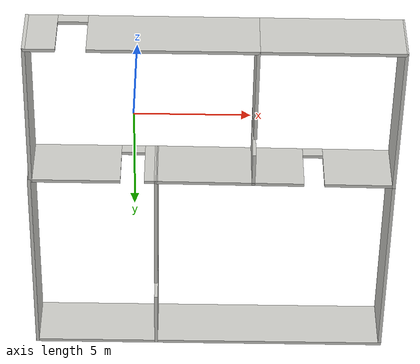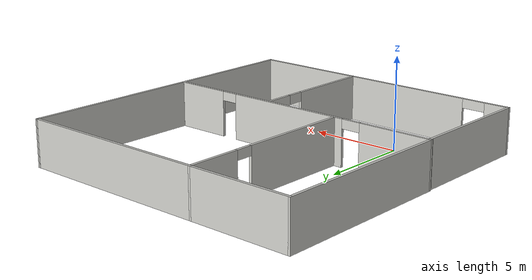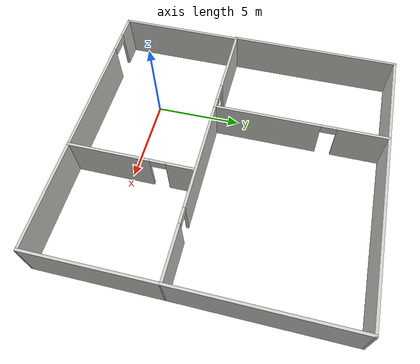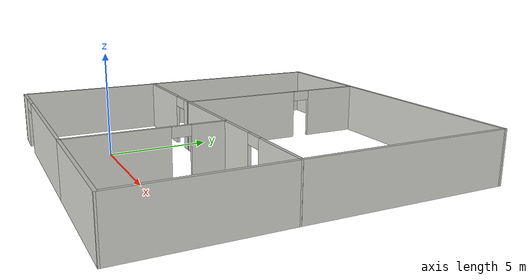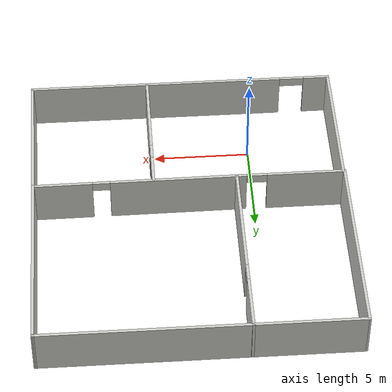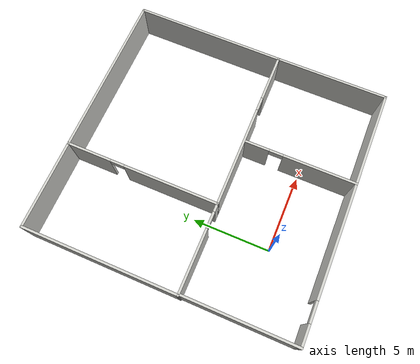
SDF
<?xml version='1.0'?>
<sdf version='1.6'>
  <model name='House_small2'>
    <pose frame=''>3.42702 5.19619 0 0 -0 0</pose>
    <link name='Wall_0'>
      <collision name='Wall_0_Collision'>
        <geometry>
          <box>
            <size>5.75 0.15 2.5</size>
          </box>
        </geometry>
        <pose frame=''>0 0 1.25 0 -0 0</pose>
      </collision>
      <visual name='Wall_0_Visual'>
        <pose frame=''>0 0 1.25 0 -0 0</pose>
        <geometry>
          <box>
            <size>5.75 0.15 2.5</size>
          </box>
        </geometry>
        <material>
          <script>
            <uri>file://media/materials/scripts/gazebo.material</uri>
            <name>Gazebo/CeilingTiled</name>
          </script>
          <ambient>0.333333 0.666667 1 1</ambient>
        </material>
        <meta>
          <layer>0</layer>
        </meta>
      </visual>
      <pose frame=''>-5.29913 8.46158 0 0 -0 0</pose>
    </link>
    <link name='Wall_10'>
      <pose frame=''>-5.30138 -1.35719 0 0 -0 3.14159</pose>
      <visual name='Wall_10_Visual_0'>
        <pose frame=''>-2.58002 0 1.25 0 -0 0</pose>
        <geometry>
          <box>
            <size>0.589959 0.15 2.5</size>
          </box>
        </geometry>
        <material>
          <script>
            <uri>file://media/materials/scripts/gazebo.material</uri>
            <name>Gazebo/CeilingTiled</name>
          </script>
          <ambient>0.333333 0.666667 1 1</ambient>
        </material>
        <meta>
          <layer>0</layer>
        </meta>
      </visual>
      <collision name='Wall_10_Collision_0'>
        <geometry>
          <box>
            <size>0.589959 0.15 2.5</size>
          </box>
        </geometry>
        <pose frame=''>-2.58002 0 1.25 0 -0 0</pose>
      </collision>
      <visual name='Wall_10_Visual_1'>
        <pose frame=''>0.822166 0 1.25 0 -0 0</pose>
        <geometry>
          <box>
            <size>4.10567 0.15 2.5</size>
          </box>
        </geometry>
        <material>
          <script>
            <uri>file://media/materials/scripts/gazebo.material</uri>
            <name>Gazebo/CeilingTiled</name>
          </script>
          <ambient>0.333333 0.666667 1 1</ambient>
        </material>
        <meta>
          <layer>0</layer>
        </meta>
      </visual>
      <collision name='Wall_10_Collision_1'>
        <geometry>
          <box>
            <size>4.10567 0.15 2.5</size>
          </box>
        </geometry>
        <pose frame=''>0.822166 0 1.25 0 -0 0</pose>
      </collision>
      <visual name='Wall_10_Visual_2'>
        <pose frame=''>-1.75785 0 2.25 0 -0 0</pose>
        <geometry>
          <box>
            <size>1.05437 0.15 0.5</size>
          </box>
        </geometry>
        <material>
          <script>
            <uri>file://media/materials/scripts/gazebo.material</uri>
            <name>Gazebo/CeilingTiled</name>
          </script>
          <ambient>0.333333 0.666667 1 1</ambient>
        </material>
        <meta>
          <layer>0</layer>
        </meta>
      </visual>
      <collision name='Wall_10_Collision_2'>
        <geometry>
          <box>
            <size>1.05437 0.15 0.5</size>
          </box>
        </geometry>
        <pose frame=''>-1.75785 0 2.25 0 -0 0</pose>
      </collision>
    </link>
    <link name='Wall_11'>
      <collision name='Wall_11_Collision'>
        <geometry>
          <box>
            <size>9.96878 0.15 2.5</size>
          </box>
        </geometry>
        <pose frame=''>0 0 1.25 0 -0 0</pose>
      </collision>
      <visual name='Wall_11_Visual'>
        <pose frame=''>0 0 1.25 0 -0 0</pose>
        <geometry>
          <box>
            <size>9.96878 0.15 2.5</size>
          </box>
        </geometry>
        <material>
          <script>
            <uri>file://media/materials/scripts/gazebo.material</uri>
            <name>Gazebo/CeilingTiled</name>
          </script>
          <ambient>0.333333 0.666667 1 1</ambient>
        </material>
        <meta>
          <layer>0</layer>
        </meta>
      </visual>
      <pose frame=''>-8.10026 3.5522 0 0 -0 1.57057</pose>
    </link>
    <link name='Wall_13'>
      <pose frame=''>2.76546 -1.31729 0 0 -0 0.007576</pose>
      <visual name='Wall_13_Visual_0'>
        <pose frame=''>-2.02263 0 1.25 0 -0 0</pose>
        <geometry>
          <box>
            <size>6.63872 0.15 2.5</size>
          </box>
        </geometry>
        <material>
          <script>
            <uri>file://media/materials/scripts/gazebo.material</uri>
            <name>Gazebo/CeilingTiled</name>
          </script>
          <ambient>0.333333 0.666667 1 1</ambient>
        </material>
        <meta>
          <layer>0</layer>
        </meta>
      </visual>
      <collision name='Wall_13_Collision_0'>
        <geometry>
          <box>
            <size>6.63872 0.15 2.5</size>
          </box>
        </geometry>
        <pose frame=''>-2.02263 0 1.25 0 -0 0</pose>
      </collision>
      <visual name='Wall_13_Visual_1'>
        <pose frame=''>3.76936 0 1.25 0 -0 0</pose>
        <geometry>
          <box>
            <size>3.14526 0.15 2.5</size>
          </box>
        </geometry>
        <material>
          <script>
            <uri>file://media/materials/scripts/gazebo.material</uri>
            <name>Gazebo/CeilingTiled</name>
          </script>
          <ambient>0.333333 0.666667 1 1</ambient>
        </material>
        <meta>
          <layer>0</layer>
        </meta>
      </visual>
      <collision name='Wall_13_Collision_1'>
        <geometry>
          <box>
            <size>3.14526 0.15 2.5</size>
          </box>
        </geometry>
        <pose frame=''>3.76936 0 1.25 0 -0 0</pose>
      </collision>
      <visual name='Wall_13_Visual_2'>
        <pose frame=''>1.74673 0 2.25 0 -0 0</pose>
        <geometry>
          <box>
            <size>0.9 0.15 0.5</size>
          </box>
        </geometry>
        <material>
          <script>
            <uri>file://media/materials/scripts/gazebo.material</uri>
            <name>Gazebo/CeilingTiled</name>
          </script>
          <ambient>0.333333 0.666667 1 1</ambient>
        </material>
        <meta>
          <layer>0</layer>
        </meta>
      </visual>
      <collision name='Wall_13_Collision_2'>
        <geometry>
          <box>
            <size>0.9 0.15 0.5</size>
          </box>
        </geometry>
        <pose frame=''>1.74673 0 2.25 0 -0 0</pose>
      </collision>
    </link>
    <link name='Wall_16'>
      <collision name='Wall_16_Collision'>
        <geometry>
          <box>
            <size>10.75 0.15 2.5</size>
          </box>
        </geometry>
        <pose frame=''>0 0 1.25 0 -0 0</pose>
      </collision>
      <visual name='Wall_16_Visual'>
        <pose frame=''>0 0 1.25 0 -0 0</pose>
        <geometry>
          <box>
            <size>10.75 0.15 2.5</size>
          </box>
        </geometry>
        <material>
          <script>
            <uri>file://media/materials/scripts/gazebo.material</uri>
            <name>Gazebo/CeilingTiled</name>
          </script>
          <ambient>0.333333 0.666667 1 1</ambient>
        </material>
        <meta>
          <layer>0</layer>
        </meta>
      </visual>
      <pose frame=''>2.80086 8.46158 0 0 -0 0</pose>
    </link>
    <link name='Wall_17'>
      <collision name='Wall_17_Collision'>
        <geometry>
          <box>
            <size>9.88922 0.15 2.5</size>
          </box>
        </geometry>
        <pose frame=''>0 0 1.25 0 -0 0</pose>
      </collision>
      <visual name='Wall_17_Visual'>
        <pose frame=''>0 0 1.25 0 -0 0</pose>
        <geometry>
          <box>
            <size>9.88922 0.15 2.5</size>
          </box>
        </geometry>
        <material>
          <script>
            <uri>file://media/materials/scripts/gazebo.material</uri>
            <name>Gazebo/CeilingTiled</name>
          </script>
          <ambient>0.333333 0.666667 1 1</ambient>
        </material>
        <meta>
          <layer>0</layer>
        </meta>
      </visual>
      <pose frame=''>8.06658 3.5921 0 0 0 -1.57784</pose>
    </link>
    <link name='Wall_19'>
      <collision name='Wall_19_Collision'>
        <geometry>
          <box>
            <size>7.33462 0.15 2.5</size>
          </box>
        </geometry>
        <pose frame=''>0 0 1.25 0 -0 0</pose>
      </collision>
      <visual name='Wall_19_Visual'>
        <pose frame=''>0 0 1.25 0 -0 0</pose>
        <geometry>
          <box>
            <size>7.33462 0.15 2.5</size>
          </box>
        </geometry>
        <material>
          <script>
            <uri>file://media/materials/scripts/gazebo.material</uri>
            <name>Gazebo/CeilingTiled</name>
          </script>
          <ambient>0.333333 0.666667 1 1</ambient>
        </material>
        <meta>
          <layer>0</layer>
        </meta>
      </visual>
      <pose frame=''>8.02694 -4.8697 0 0 0 -1.57229</pose>
    </link>
    <link name='Wall_22'>
      <collision name='Wall_22_Collision'>
        <geometry>
          <box>
            <size>6.35982 0.15 2.5</size>
          </box>
        </geometry>
        <pose frame=''>0 0 1.25 0 -0 0</pose>
      </collision>
      <visual name='Wall_22_Visual'>
        <pose frame=''>0 0 1.25 0 -0 0</pose>
        <geometry>
          <box>
            <size>6.35982 0.15 2.5</size>
          </box>
        </geometry>
        <material>
          <script>
            <uri>file://media/materials/scripts/gazebo.material</uri>
            <name>Gazebo/CeilingTiled</name>
          </script>
          <ambient>0.333333 0.666667 1 1</ambient>
        </material>
        <meta>
          <layer>0</layer>
        </meta>
      </visual>
      <pose frame=''>4.91667 -8.462 0 0 -0 3.14159</pose>
    </link>
    <link name='Wall_23'>
      <pose frame=''>1.81176 -4.912 0 0 -0 1.5708</pose>
      <visual name='Wall_23_Visual_0'>
        <pose frame=''>-1.28457 0 1.25 0 -0 0</pose>
        <geometry>
          <box>
            <size>4.68086 0.15 2.5</size>
          </box>
        </geometry>
        <material>
          <script>
            <uri>file://media/materials/scripts/gazebo.material</uri>
            <name>Gazebo/CeilingTiled</name>
          </script>
          <ambient>0.333333 0.666667 1 1</ambient>
        </material>
        <meta>
          <layer>0</layer>
        </meta>
      </visual>
      <collision name='Wall_23_Collision_0'>
        <geometry>
          <box>
            <size>4.68086 0.15 2.5</size>
          </box>
        </geometry>
        <pose frame=''>-1.28457 0 1.25 0 -0 0</pose>
      </collision>
      <visual name='Wall_23_Visual_1'>
        <pose frame=''>2.79043 0 1.25 0 -0 0</pose>
        <geometry>
          <box>
            <size>1.66914 0.15 2.5</size>
          </box>
        </geometry>
        <material>
          <script>
            <uri>file://media/materials/scripts/gazebo.material</uri>
            <name>Gazebo/CeilingTiled</name>
          </script>
          <ambient>0.333333 0.666667 1 1</ambient>
        </material>
        <meta>
          <layer>0</layer>
        </meta>
      </visual>
      <collision name='Wall_23_Collision_1'>
        <geometry>
          <box>
            <size>1.66914 0.15 2.5</size>
          </box>
        </geometry>
        <pose frame=''>2.79043 0 1.25 0 -0 0</pose>
      </collision>
      <visual name='Wall_23_Visual_2'>
        <pose frame=''>1.50586 0 2.25 0 -0 0</pose>
        <geometry>
          <box>
            <size>0.9 0.15 0.5</size>
          </box>
        </geometry>
        <material>
          <script>
            <uri>file://media/materials/scripts/gazebo.material</uri>
            <name>Gazebo/CeilingTiled</name>
          </script>
          <ambient>0.333333 0.666667 1 1</ambient>
        </material>
        <meta>
          <layer>0</layer>
        </meta>
      </visual>
      <collision name='Wall_23_Collision_2'>
        <geometry>
          <box>
            <size>0.9 0.15 0.5</size>
          </box>
        </geometry>
        <pose frame=''>1.50586 0 2.25 0 -0 0</pose>
      </collision>
    </link>
    <link name='Wall_25'>
      <pose frame=''>-3.11324 -8.462 0 0 -0 3.14159</pose>
      <visual name='Wall_25_Visual_0'>
        <pose frame=''>-1.34886 0 1.25 0 -0 0</pose>
        <geometry>
          <box>
            <size>7.30227 0.15 2.5</size>
          </box>
        </geometry>
        <material>
          <script>
            <uri>file://media/materials/scripts/gazebo.material</uri>
            <name>Gazebo/CeilingTiled</name>
          </script>
          <ambient>0.333333 0.666667 1 1</ambient>
        </material>
        <meta>
          <layer>0</layer>
        </meta>
      </visual>
      <collision name='Wall_25_Collision_0'>
        <geometry>
          <box>
            <size>7.30227 0.15 2.5</size>
          </box>
        </geometry>
        <pose frame=''>-1.34886 0 1.25 0 -0 0</pose>
      </collision>
      <visual name='Wall_25_Visual_1'>
        <pose frame=''>4.29785 0 1.25 0 -0 0</pose>
        <geometry>
          <box>
            <size>1.40431 0.15 2.5</size>
          </box>
        </geometry>
        <material>
          <script>
            <uri>file://media/materials/scripts/gazebo.material</uri>
            <name>Gazebo/CeilingTiled</name>
          </script>
          <ambient>0.333333 0.666667 1 1</ambient>
        </material>
        <meta>
          <layer>0</layer>
        </meta>
      </visual>
      <collision name='Wall_25_Collision_1'>
        <geometry>
          <box>
            <size>1.40431 0.15 2.5</size>
          </box>
        </geometry>
        <pose frame=''>4.29785 0 1.25 0 -0 0</pose>
      </collision>
      <visual name='Wall_25_Visual_2'>
        <pose frame=''>2.94898 0 2.25 0 -0 0</pose>
        <geometry>
          <box>
            <size>1.29342 0.15 0.5</size>
          </box>
        </geometry>
        <material>
          <script>
            <uri>file://media/materials/scripts/gazebo.material</uri>
            <name>Gazebo/CeilingTiled</name>
          </script>
          <ambient>0.333333 0.666667 1 1</ambient>
        </material>
        <meta>
          <layer>0</layer>
        </meta>
      </visual>
      <collision name='Wall_25_Collision_2'>
        <geometry>
          <box>
            <size>1.29342 0.15 0.5</size>
          </box>
        </geometry>
        <pose frame=''>2.94898 0 2.25 0 -0 0</pose>
      </collision>
    </link>
    <link name='Wall_26'>
      <collision name='Wall_26_Collision'>
        <geometry>
          <box>
            <size>7.25 0.15 2.5</size>
          </box>
        </geometry>
        <pose frame=''>0 0 1.25 0 -0 0</pose>
      </collision>
      <visual name='Wall_26_Visual'>
        <pose frame=''>0 0 1.25 0 -0 0</pose>
        <geometry>
          <box>
            <size>7.25 0.15 2.5</size>
          </box>
        </geometry>
        <material>
          <script>
            <uri>file://media/materials/scripts/gazebo.material</uri>
            <name>Gazebo/CeilingTiled</name>
          </script>
          <ambient>0.333333 0.666667 1 1</ambient>
        </material>
        <meta>
          <layer>0</layer>
        </meta>
      </visual>
      <pose frame=''>-8.03824 -4.912 0 0 -0 1.5708</pose>
    </link>
    <link name='Wall_9'>
      <pose frame=''>-2.50026 3.5522 0 0 0 -1.57102</pose>
      <visual name='Wall_9_Visual_0'>
        <pose frame=''>-3.51644 0 1.25 0 -0 0</pose>
        <geometry>
          <box>
            <size>2.9359 0.15 2.5</size>
          </box>
        </geometry>
        <material>
          <script>
            <uri>file://media/materials/scripts/gazebo.material</uri>
            <name>Gazebo/CeilingTiled</name>
          </script>
          <ambient>0.333333 0.666667 1 1</ambient>
        </material>
        <meta>
          <layer>0</layer>
        </meta>
      </visual>
      <collision name='Wall_9_Collision_0'>
        <geometry>
          <box>
            <size>2.9359 0.15 2.5</size>
          </box>
        </geometry>
        <pose frame=''>-3.51644 0 1.25 0 -0 0</pose>
      </collision>
      <visual name='Wall_9_Visual_1'>
        <pose frame=''>1.91795 0 1.25 0 -0 0</pose>
        <geometry>
          <box>
            <size>6.13288 0.15 2.5</size>
          </box>
        </geometry>
        <material>
          <script>
            <uri>file://media/materials/scripts/gazebo.material</uri>
            <name>Gazebo/CeilingTiled</name>
          </script>
          <ambient>0.333333 0.666667 1 1</ambient>
        </material>
        <meta>
          <layer>0</layer>
        </meta>
      </visual>
      <collision name='Wall_9_Collision_1'>
        <geometry>
          <box>
            <size>6.13288 0.15 2.5</size>
          </box>
        </geometry>
        <pose frame=''>1.91795 0 1.25 0 -0 0</pose>
      </collision>
      <visual name='Wall_9_Visual_2'>
        <pose frame=''>-1.59849 0 2.25 0 -0 0</pose>
        <geometry>
          <box>
            <size>0.9 0.15 0.5</size>
          </box>
        </geometry>
        <material>
          <script>
            <uri>file://media/materials/scripts/gazebo.material</uri>
            <name>Gazebo/CeilingTiled</name>
          </script>
          <ambient>0.333333 0.666667 1 1</ambient>
        </material>
        <meta>
          <layer>0</layer>
        </meta>
      </visual>
      <collision name='Wall_9_Collision_2'>
        <geometry>
          <box>
            <size>0.9 0.15 0.5</size>
          </box>
        </geometry>
        <pose frame=''>-1.59849 0 2.25 0 -0 0</pose>
      </collision>
    </link>
    <static>1</static>
  </model>
</sdf>
